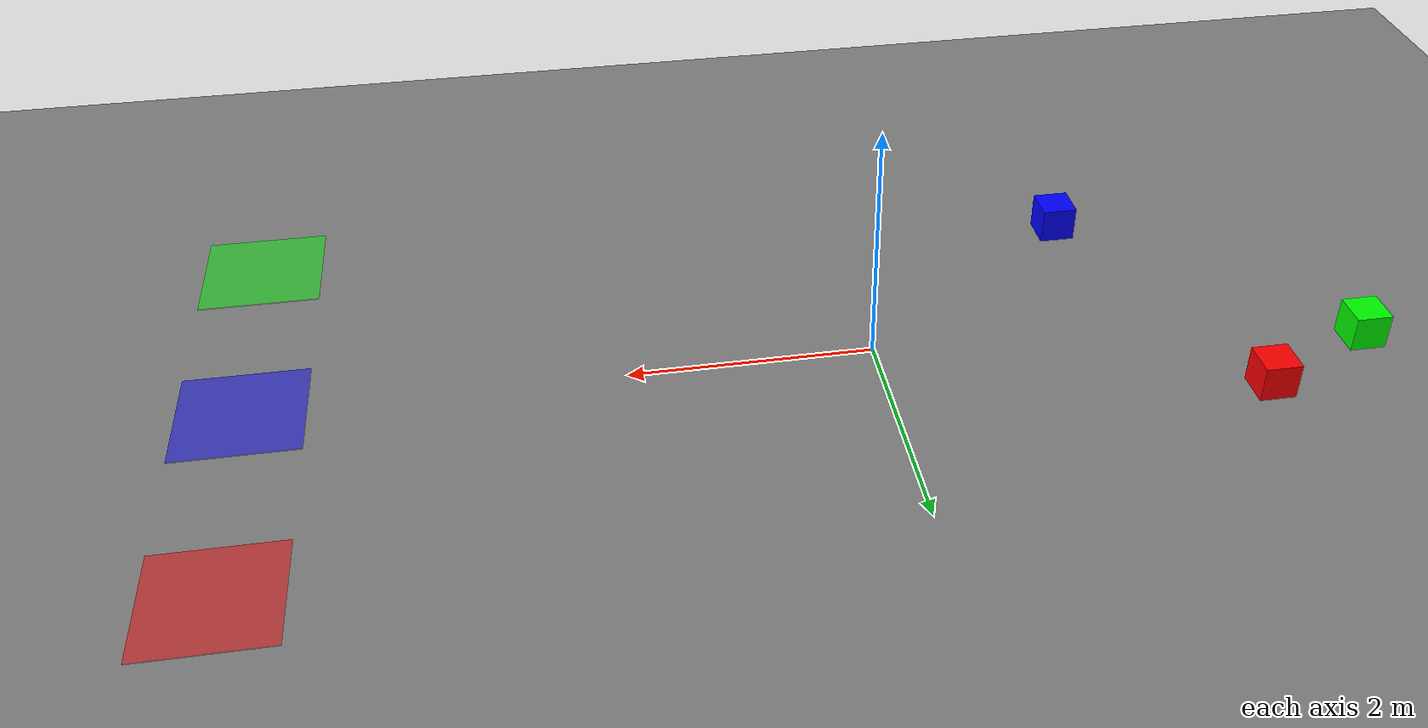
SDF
<?xml version="1.0"?>
<!-- SmartSort Warehouse World - Simplified for Gazebo Harmonic -->
<sdf version="1.8">
  <world name="warehouse">

    <!-- Physics Engine -->
    <plugin filename="gz-sim-physics-system" name="gz::sim::systems::Physics"/>
    <plugin filename="gz-sim-user-commands-system" name="gz::sim::systems::UserCommands"/>
    <plugin filename="gz-sim-scene-broadcaster-system" name="gz::sim::systems::SceneBroadcaster"/>
    <plugin filename="gz-sim-sensors-system" name="gz::sim::systems::Sensors">
      <render_engine>ogre2</render_engine>
    </plugin>

    <gravity>0 0 -9.8</gravity>

    <!-- Sun Light -->
    <light type="directional" name="sun">
      <cast_shadows>true</cast_shadows>
      <pose>0 0 10 0 0 0</pose>
      <diffuse>0.8 0.8 0.8 1</diffuse>
      <specular>0.2 0.2 0.2 1</specular>
      <direction>-0.5 0.1 -0.9</direction>
    </light>

    <!-- Ground Plane -->
    <model name="ground_plane">
      <static>true</static>
      <link name="link">
        <collision name="collision">
          <geometry>
            <plane>
              <normal>0 0 1</normal>
              <size>20 20</size>
            </plane>
          </geometry>
        </collision>
        <visual name="visual">
          <geometry>
            <plane>
              <normal>0 0 1</normal>
              <size>20 20</size>
            </plane>
          </geometry>
          <material>
            <ambient>0.5 0.5 0.5 1</ambient>
            <diffuse>0.5 0.5 0.5 1</diffuse>
          </material>
        </visual>
      </link>
    </model>

    <!-- Zone A - Red Package Zone -->
    <model name="zone_a">
      <static>true</static>
      <pose>5 2 0.01 0 0 0</pose>
      <link name="link">
        <visual name="visual">
          <geometry>
            <box>
              <size>1 1 0.01</size>
            </box>
          </geometry>
          <material>
            <ambient>1 0 0 0.5</ambient>
            <diffuse>1 0 0 0.5</diffuse>
          </material>
        </visual>
      </link>
    </model>

    <!-- Zone B - Blue Package Zone -->
    <model name="zone_b">
      <static>true</static>
      <pose>5 0 0.01 0 0 0</pose>
      <link name="link">
        <visual name="visual">
          <geometry>
            <box>
              <size>1 1 0.01</size>
            </box>
          </geometry>
          <material>
            <ambient>0 0 1 0.5</ambient>
            <diffuse>0 0 1 0.5</diffuse>
          </material>
        </visual>
      </link>
    </model>

    <!-- Zone C - Green Package Zone -->
    <model name="zone_c">
      <static>true</static>
      <pose>5 -2 0.01 0 0 0</pose>
      <link name="link">
        <visual name="visual">
          <geometry>
            <box>
              <size>1 1 0.01</size>
            </box>
          </geometry>
          <material>
            <ambient>0 1 0 0.5</ambient>
            <diffuse>0 1 0 0.5</diffuse>
          </material>
        </visual>
      </link>
    </model>

    <!-- Red Package 1 -->
    <model name="red_package_1">
      <pose>-3 1 0.15 0 0 0</pose>
      <link name="link">
        <inertial>
          <mass>1.0</mass>
          <inertia>
            <ixx>0.015</ixx>
            <iyy>0.015</iyy>
            <izz>0.015</izz>
          </inertia>
        </inertial>
        <collision name="collision">
          <geometry>
            <box>
              <size>0.3 0.3 0.3</size>
            </box>
          </geometry>
        </collision>
        <visual name="visual">
          <geometry>
            <box>
              <size>0.3 0.3 0.3</size>
            </box>
          </geometry>
          <material>
            <ambient>1 0 0 1</ambient>
            <diffuse>1 0 0 1</diffuse>
          </material>
        </visual>
      </link>
    </model>

    <!-- Blue Package 1 -->
    <model name="blue_package_1">
      <pose>-2 -1.5 0.15 0 0 0</pose>
      <link name="link">
        <inertial>
          <mass>1.0</mass>
          <inertia>
            <ixx>0.015</ixx>
            <iyy>0.015</iyy>
            <izz>0.015</izz>
          </inertia>
        </inertial>
        <collision name="collision">
          <geometry>
            <box>
              <size>0.3 0.3 0.3</size>
            </box>
          </geometry>
        </collision>
        <visual name="visual">
          <geometry>
            <box>
              <size>0.3 0.3 0.3</size>
            </box>
          </geometry>
          <material>
            <ambient>0 0 1 1</ambient>
            <diffuse>0 0 1 1</diffuse>
          </material>
        </visual>
      </link>
    </model>

    <!-- Green Package 1 -->
    <model name="green_package_1">
      <pose>-4 0.5 0.15 0 0 0</pose>
      <link name="link">
        <inertial>
          <mass>1.0</mass>
          <inertia>
            <ixx>0.015</ixx>
            <iyy>0.015</iyy>
            <izz>0.015</izz>
          </inertia>
        </inertial>
        <collision name="collision">
          <geometry>
            <box>
              <size>0.3 0.3 0.3</size>
            </box>
          </geometry>
        </collision>
        <visual name="visual">
          <geometry>
            <box>
              <size>0.3 0.3 0.3</size>
            </box>
          </geometry>
          <material>
            <ambient>0 1 0 1</ambient>
            <diffuse>0 1 0 1</diffuse>
          </material>
        </visual>
      </link>
    </model>

  </world>
</sdf>
